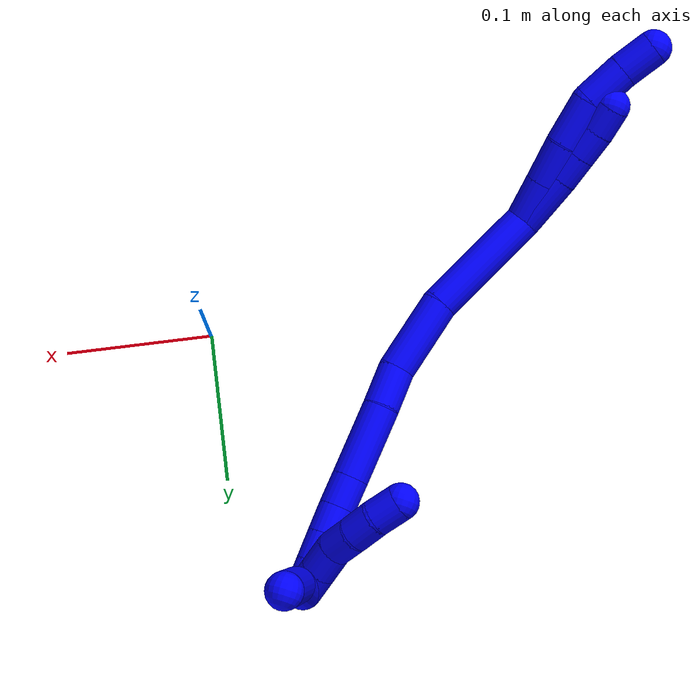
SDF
<sdf version="1.7">
 <world name="default">
  <model name="1">
   <static>0</static>
   <link name="1">
    <collision name="collision-cylinder-e_1_2_8">
     <pose>0.00698 -0.004528 -0.012782 2.80111 0.475363 1.90733</pose>
     <geometry><cylinder><radius>0.0125</radius><length>0.030503</length></cylinder></geometry>
     <surface>
      <friction><ode><mu>1.16</mu><mu2>1.16</mu2><slip1>0</slip1><slip2>0</slip2></ode></friction>
      <contact><ode><kp>1e+06</kp><kd>1</kd><max_vel>0</max_vel><min_depth>0.001</min_depth></ode></contact>
     </surface>
    </collision>
    <visual name="visual-cylinder-e_1_2_8">
     <pose>0.00698 -0.004528 -0.012782 2.80111 0.475363 1.90733</pose>
     <geometry><cylinder><radius>0.0125</radius><length>0.030503</length></cylinder></geometry>
     <material><ambient>0 0 1 1</ambient></material>
    </visual>
    <collision name="collision-cylinder-e_2_8_9">
     <pose>0.020922 -0.013339 -0.037979 2.80945 0.487458 1.95542</pose>
     <geometry><cylinder><radius>0.0125</radius><length>0.029727</length></cylinder></geometry>
     <surface>
      <friction><ode><mu>1.16</mu><mu2>1.16</mu2><slip1>0</slip1><slip2>0</slip2></ode></friction>
      <contact><ode><kp>1e+06</kp><kd>1</kd><max_vel>0</max_vel><min_depth>0.001</min_depth></ode></contact>
     </surface>
    </collision>
    <visual name="visual-cylinder-e_2_8_9">
     <pose>0.020922 -0.013339 -0.037979 2.80945 0.487458 1.95542</pose>
     <geometry><cylinder><radius>0.0125</radius><length>0.029727</length></cylinder></geometry>
     <material><ambient>0 0 1 1</ambient></material>
    </visual>
    <collision name="collision-cylinder-e_3_9_10">
     <pose>0.034323 -0.023215 -0.065097 2.77801 0.388492 1.63861</pose>
     <geometry><cylinder><radius>0.0125</radius><length>0.033997</length></cylinder></geometry>
     <surface>
      <friction><ode><mu>1.16</mu><mu2>1.16</mu2><slip1>0</slip1><slip2>0</slip2></ode></friction>
      <contact><ode><kp>1e+06</kp><kd>1</kd><max_vel>0</max_vel><min_depth>0.001</min_depth></ode></contact>
     </surface>
    </collision>
    <visual name="visual-cylinder-e_3_9_10">
     <pose>0.034323 -0.023215 -0.065097 2.77801 0.388492 1.63861</pose>
     <geometry><cylinder><radius>0.0125</radius><length>0.033997</length></cylinder></geometry>
     <material><ambient>0 0 1 1</ambient></material>
    </visual>
    <collision name="collision-cylinder-e_4_10_11">
     <pose>0.043326 -0.037456 -0.091864 2.51977 0.171088 0.521577</pose>
     <geometry><cylinder><radius>0.0125</radius><length>0.030124</length></cylinder></geometry>
     <surface>
      <friction><ode><mu>1.16</mu><mu2>1.16</mu2><slip1>0</slip1><slip2>0</slip2></ode></friction>
      <contact><ode><kp>1e+06</kp><kd>1</kd><max_vel>0</max_vel><min_depth>0.001</min_depth></ode></contact>
     </surface>
    </collision>
    <visual name="visual-cylinder-e_4_10_11">
     <pose>0.043326 -0.037456 -0.091864 2.51977 0.171088 0.521577</pose>
     <geometry><cylinder><radius>0.0125</radius><length>0.030124</length></cylinder></geometry>
     <material><ambient>0 0 1 1</ambient></material>
    </visual>
    <collision name="collision-cylinder-e_5_11_6">
     <pose>0.048329 -0.054527 -0.113283 2.40843 0.191369 0.489927</pose>
     <geometry><cylinder><radius>0.0125</radius><length>0.025649</length></cylinder></geometry>
     <surface>
      <friction><ode><mu>1.16</mu><mu2>1.16</mu2><slip1>0</slip1><slip2>0</slip2></ode></friction>
      <contact><ode><kp>1e+06</kp><kd>1</kd><max_vel>0</max_vel><min_depth>0.001</min_depth></ode></contact>
     </surface>
    </collision>
    <visual name="visual-cylinder-e_5_11_6">
     <pose>0.048329 -0.054527 -0.113283 2.40843 0.191369 0.489927</pose>
     <geometry><cylinder><radius>0.0125</radius><length>0.025649</length></cylinder></geometry>
     <material><ambient>0 0 1 1</ambient></material>
    </visual>
    <collision name="collision-cylinder-e_1_2_12">
     <pose>0.007067 -0.009542 -0.015558 2.59144 0.369441 1.1696</pose>
     <geometry><cylinder><radius>0.0125</radius><length>0.039143</length></cylinder></geometry>
     <surface>
      <friction><ode><mu>1.16</mu><mu2>1.16</mu2><slip1>0</slip1><slip2>0</slip2></ode></friction>
      <contact><ode><kp>1e+06</kp><kd>1</kd><max_vel>0</max_vel><min_depth>0.001</min_depth></ode></contact>
     </surface>
    </collision>
    <visual name="visual-cylinder-e_1_2_12">
     <pose>0.007067 -0.009542 -0.015558 2.59144 0.369441 1.1696</pose>
     <geometry><cylinder><radius>0.0125</radius><length>0.039143</length></cylinder></geometry>
     <material><ambient>0 0 1 1</ambient></material>
    </visual>
    <collision name="collision-cylinder-e_2_12_13">
     <pose>0.018281 -0.023664 -0.039346 2.63373 0.414713 1.36236</pose>
     <geometry><cylinder><radius>0.0125</radius><length>0.020583</length></cylinder></geometry>
     <surface>
      <friction><ode><mu>1.16</mu><mu2>1.16</mu2><slip1>0</slip1><slip2>0</slip2></ode></friction>
      <contact><ode><kp>1e+06</kp><kd>1</kd><max_vel>0</max_vel><min_depth>0.001</min_depth></ode></contact>
     </surface>
    </collision>
    <visual name="visual-cylinder-e_2_12_13">
     <pose>0.018281 -0.023664 -0.039346 2.63373 0.414713 1.36236</pose>
     <geometry><cylinder><radius>0.0125</radius><length>0.020583</length></cylinder></geometry>
     <material><ambient>0 0 1 1</ambient></material>
    </visual>
    <collision name="collision-cylinder-e_3_13_14">
     <pose>0.026483 -0.032716 -0.055605 2.63348 0.415624 1.36406</pose>
     <geometry><cylinder><radius>0.0125</radius><length>0.02009</length></cylinder></geometry>
     <surface>
      <friction><ode><mu>1.16</mu><mu2>1.16</mu2><slip1>0</slip1><slip2>0</slip2></ode></friction>
      <contact><ode><kp>1e+06</kp><kd>1</kd><max_vel>0</max_vel><min_depth>0.001</min_depth></ode></contact>
     </surface>
    </collision>
    <visual name="visual-cylinder-e_3_13_14">
     <pose>0.026483 -0.032716 -0.055605 2.63348 0.415624 1.36406</pose>
     <geometry><cylinder><radius>0.0125</radius><length>0.02009</length></cylinder></geometry>
     <material><ambient>0 0 1 1</ambient></material>
    </visual>
    <collision name="collision-cylinder-e_4_14_5">
     <pose>0.03536 -0.040897 -0.071687 2.70984 0.497994 1.71826</pose>
     <geometry><cylinder><radius>0.0125</radius><length>0.020184</length></cylinder></geometry>
     <surface>
      <friction><ode><mu>1.16</mu><mu2>1.16</mu2><slip1>0</slip1><slip2>0</slip2></ode></friction>
      <contact><ode><kp>1e+06</kp><kd>1</kd><max_vel>0</max_vel><min_depth>0.001</min_depth></ode></contact>
     </surface>
    </collision>
    <visual name="visual-cylinder-e_4_14_5">
     <pose>0.03536 -0.040897 -0.071687 2.70984 0.497994 1.71826</pose>
     <geometry><cylinder><radius>0.0125</radius><length>0.020184</length></cylinder></geometry>
     <material><ambient>0 0 1 1</ambient></material>
    </visual>
    <collision name="collision-cylinder-e_1_2_15">
     <pose>0.002152 0.019635 0.036551 -0.492946 0.051828 -0.013042</pose>
     <geometry><cylinder><radius>0.0125</radius><length>0.083094</length></cylinder></geometry>
     <surface>
      <friction><ode><mu>1.16</mu><mu2>1.16</mu2><slip1>0</slip1><slip2>0</slip2></ode></friction>
      <contact><ode><kp>1e+06</kp><kd>1</kd><max_vel>0</max_vel><min_depth>0.001</min_depth></ode></contact>
     </surface>
    </collision>
    <visual name="visual-cylinder-e_1_2_15">
     <pose>0.002152 0.019635 0.036551 -0.492946 0.051828 -0.013042</pose>
     <geometry><cylinder><radius>0.0125</radius><length>0.083094</length></cylinder></geometry>
     <material><ambient>0 0 1 1</ambient></material>
    </visual>
    <collision name="collision-cylinder-e_2_15_16">
     <pose>0.003645 0.047337 0.098839 -0.303772 -0.024464 0.003745</pose>
     <geometry><cylinder><radius>0.0125</radius><length>0.053959</length></cylinder></geometry>
     <surface>
      <friction><ode><mu>1.16</mu><mu2>1.16</mu2><slip1>0</slip1><slip2>0</slip2></ode></friction>
      <contact><ode><kp>1e+06</kp><kd>1</kd><max_vel>0</max_vel><min_depth>0.001</min_depth></ode></contact>
     </surface>
    </collision>
    <visual name="visual-cylinder-e_2_15_16">
     <pose>0.003645 0.047337 0.098839 -0.303772 -0.024464 0.003745</pose>
     <geometry><cylinder><radius>0.0125</radius><length>0.053959</length></cylinder></geometry>
     <material><ambient>0 0 1 1</ambient></material>
    </visual>
    <collision name="collision-cylinder-e_3_16_17">
     <pose>0.003346 0.05669 0.138818 -0.090021 0.025286 -0.001139</pose>
     <geometry><cylinder><radius>0.0125</radius><length>0.02861</length></cylinder></geometry>
     <surface>
      <friction><ode><mu>1.16</mu><mu2>1.16</mu2><slip1>0</slip1><slip2>0</slip2></ode></friction>
      <contact><ode><kp>1e+06</kp><kd>1</kd><max_vel>0</max_vel><min_depth>0.001</min_depth></ode></contact>
     </surface>
    </collision>
    <visual name="visual-cylinder-e_3_16_17">
     <pose>0.003346 0.05669 0.138818 -0.090021 0.025286 -0.001139</pose>
     <geometry><cylinder><radius>0.0125</radius><length>0.02861</length></cylinder></geometry>
     <material><ambient>0 0 1 1</ambient></material>
    </visual>
    <collision name="collision-cylinder-e_4_17_18">
     <pose>0.002126 0.061548 0.178844 -0.137662 -0.060717 0.004187</pose>
     <geometry><cylinder><radius>0.0125</radius><length>0.052155</length></cylinder></geometry>
     <surface>
      <friction><ode><mu>1.16</mu><mu2>1.16</mu2><slip1>0</slip1><slip2>0</slip2></ode></friction>
      <contact><ode><kp>1e+06</kp><kd>1</kd><max_vel>0</max_vel><min_depth>0.001</min_depth></ode></contact>
     </surface>
    </collision>
    <visual name="visual-cylinder-e_4_17_18">
     <pose>0.002126 0.061548 0.178844 -0.137662 -0.060717 0.004187</pose>
     <geometry><cylinder><radius>0.0125</radius><length>0.052155</length></cylinder></geometry>
     <material><ambient>0 0 1 1</ambient></material>
    </visual>
    <collision name="collision-cylinder-e_5_18_19">
     <pose>2.4e-05 0.06665 0.215385 -0.141323 -0.047794 0.003384</pose>
     <geometry><cylinder><radius>0.0125</radius><length>0.021758</length></cylinder></geometry>
     <surface>
      <friction><ode><mu>1.16</mu><mu2>1.16</mu2><slip1>0</slip1><slip2>0</slip2></ode></friction>
      <contact><ode><kp>1e+06</kp><kd>1</kd><max_vel>0</max_vel><min_depth>0.001</min_depth></ode></contact>
     </surface>
    </collision>
    <visual name="visual-cylinder-e_5_18_19">
     <pose>2.4e-05 0.06665 0.215385 -0.141323 -0.047794 0.003384</pose>
     <geometry><cylinder><radius>0.0125</radius><length>0.021758</length></cylinder></geometry>
     <material><ambient>0 0 1 1</ambient></material>
    </visual>
    <collision name="collision-cylinder-e_6_19_20">
     <pose>-0.000642 0.069219 0.236184 -0.102981 -0.014398 0.000742</pose>
     <geometry><cylinder><radius>0.0125</radius><length>0.020191</length></cylinder></geometry>
     <surface>
      <friction><ode><mu>1.16</mu><mu2>1.16</mu2><slip1>0</slip1><slip2>0</slip2></ode></friction>
      <contact><ode><kp>1e+06</kp><kd>1</kd><max_vel>0</max_vel><min_depth>0.001</min_depth></ode></contact>
     </surface>
    </collision>
    <visual name="visual-cylinder-e_6_19_20">
     <pose>-0.000642 0.069219 0.236184 -0.102981 -0.014398 0.000742</pose>
     <geometry><cylinder><radius>0.0125</radius><length>0.020191</length></cylinder></geometry>
     <material><ambient>0 0 1 1</ambient></material>
    </visual>
    <collision name="collision-cylinder-e_7_20_21">
     <pose>-0.000924 0.071263 0.256288 -0.099674 -0.013514 0.000674</pose>
     <geometry><cylinder><radius>0.0125</radius><length>0.020227</length></cylinder></geometry>
     <surface>
      <friction><ode><mu>1.16</mu><mu2>1.16</mu2><slip1>0</slip1><slip2>0</slip2></ode></friction>
      <contact><ode><kp>1e+06</kp><kd>1</kd><max_vel>0</max_vel><min_depth>0.001</min_depth></ode></contact>
     </surface>
    </collision>
    <visual name="visual-cylinder-e_7_20_21">
     <pose>-0.000924 0.071263 0.256288 -0.099674 -0.013514 0.000674</pose>
     <geometry><cylinder><radius>0.0125</radius><length>0.020227</length></cylinder></geometry>
     <material><ambient>0 0 1 1</ambient></material>
    </visual>
    <collision name="collision-cylinder-e_8_21_1">
     <pose>-0.000999 0.073143 0.276315 -0.087471 0.006148 -0.000269</pose>
     <geometry><cylinder><radius>0.0125</radius><length>0.020006</length></cylinder></geometry>
     <surface>
      <friction><ode><mu>1.16</mu><mu2>1.16</mu2><slip1>0</slip1><slip2>0</slip2></ode></friction>
      <contact><ode><kp>1e+06</kp><kd>1</kd><max_vel>0</max_vel><min_depth>0.001</min_depth></ode></contact>
     </surface>
    </collision>
    <visual name="visual-cylinder-e_8_21_1">
     <pose>-0.000999 0.073143 0.276315 -0.087471 0.006148 -0.000269</pose>
     <geometry><cylinder><radius>0.0125</radius><length>0.020006</length></cylinder></geometry>
     <material><ambient>0 0 1 1</ambient></material>
    </visual>
    <collision name="collision-cylinder-e_1_1_22">
     <pose>0.013018 0.073379 0.286531 1.19528 1.52177 1.15007</pose>
     <geometry><cylinder><radius>0.0125</radius><length>0.027944</length></cylinder></geometry>
     <surface>
      <friction><ode><mu>1.16</mu><mu2>1.16</mu2><slip1>0</slip1><slip2>0</slip2></ode></friction>
      <contact><ode><kp>1e+06</kp><kd>1</kd><max_vel>0</max_vel><min_depth>0.001</min_depth></ode></contact>
     </surface>
    </collision>
    <visual name="visual-cylinder-e_1_1_22">
     <pose>0.013018 0.073379 0.286531 1.19528 1.52177 1.15007</pose>
     <geometry><cylinder><radius>0.0125</radius><length>0.027944</length></cylinder></geometry>
     <material><ambient>0 0 1 1</ambient></material>
    </visual>
    <collision name="collision-cylinder-e_2_22_4">
     <pose>0.061955 0.067011 0.293221 0.727371 1.32919 0.579629</pose>
     <geometry><cylinder><radius>0.0125</radius><length>0.072056</length></cylinder></geometry>
     <surface>
      <friction><ode><mu>1.16</mu><mu2>1.16</mu2><slip1>0</slip1><slip2>0</slip2></ode></friction>
      <contact><ode><kp>1e+06</kp><kd>1</kd><max_vel>0</max_vel><min_depth>0.001</min_depth></ode></contact>
     </surface>
    </collision>
    <visual name="visual-cylinder-e_2_22_4">
     <pose>0.061955 0.067011 0.293221 0.727371 1.32919 0.579629</pose>
     <geometry><cylinder><radius>0.0125</radius><length>0.072056</length></cylinder></geometry>
     <material><ambient>0 0 1 1</ambient></material>
    </visual>
    <collision name="collision-cylinder-e_1_1_23">
     <pose>0.003969 0.069859 0.278622 2.64427 0.512814 1.60282</pose>
     <geometry><cylinder><radius>0.0125</radius><length>0.02</length></cylinder></geometry>
     <surface>
      <friction><ode><mu>1.16</mu><mu2>1.16</mu2><slip1>0</slip1><slip2>0</slip2></ode></friction>
      <contact><ode><kp>1e+06</kp><kd>1</kd><max_vel>0</max_vel><min_depth>0.001</min_depth></ode></contact>
     </surface>
    </collision>
    <visual name="visual-cylinder-e_1_1_23">
     <pose>0.003969 0.069859 0.278622 2.64427 0.512814 1.60282</pose>
     <geometry><cylinder><radius>0.0125</radius><length>0.02</length></cylinder></geometry>
     <material><ambient>0 0 1 1</ambient></material>
    </visual>
    <collision name="collision-cylinder-e_2_23_24">
     <pose>0.014046 0.061502 0.263505 2.62862 0.543367 1.6311</pose>
     <geometry><cylinder><radius>0.0125</radius><length>0.02</length></cylinder></geometry>
     <surface>
      <friction><ode><mu>1.16</mu><mu2>1.16</mu2><slip1>0</slip1><slip2>0</slip2></ode></friction>
      <contact><ode><kp>1e+06</kp><kd>1</kd><max_vel>0</max_vel><min_depth>0.001</min_depth></ode></contact>
     </surface>
    </collision>
    <visual name="visual-cylinder-e_2_23_24">
     <pose>0.014046 0.061502 0.263505 2.62862 0.543367 1.6311</pose>
     <geometry><cylinder><radius>0.0125</radius><length>0.02</length></cylinder></geometry>
     <material><ambient>0 0 1 1</ambient></material>
    </visual>
    <collision name="collision-cylinder-e_3_24_25">
     <pose>0.024694 0.050972 0.250576 2.28369 0.579798 1.15589</pose>
     <geometry><cylinder><radius>0.0125</radius><length>0.02</length></cylinder></geometry>
     <surface>
      <friction><ode><mu>1.16</mu><mu2>1.16</mu2><slip1>0</slip1><slip2>0</slip2></ode></friction>
      <contact><ode><kp>1e+06</kp><kd>1</kd><max_vel>0</max_vel><min_depth>0.001</min_depth></ode></contact>
     </surface>
    </collision>
    <visual name="visual-cylinder-e_3_24_25">
     <pose>0.024694 0.050972 0.250576 2.28369 0.579798 1.15589</pose>
     <geometry><cylinder><radius>0.0125</radius><length>0.02</length></cylinder></geometry>
     <material><ambient>0 0 1 1</ambient></material>
    </visual>
    <collision name="collision-cylinder-e_4_25_26">
     <pose>0.034507 0.038251 0.238753 2.35291 0.448312 1.0024</pose>
     <geometry><cylinder><radius>0.0125</radius><length>0.02</length></cylinder></geometry>
     <surface>
      <friction><ode><mu>1.16</mu><mu2>1.16</mu2><slip1>0</slip1><slip2>0</slip2></ode></friction>
      <contact><ode><kp>1e+06</kp><kd>1</kd><max_vel>0</max_vel><min_depth>0.001</min_depth></ode></contact>
     </surface>
    </collision>
    <visual name="visual-cylinder-e_4_25_26">
     <pose>0.034507 0.038251 0.238753 2.35291 0.448312 1.0024</pose>
     <geometry><cylinder><radius>0.0125</radius><length>0.02</length></cylinder></geometry>
     <material><ambient>0 0 1 1</ambient></material>
    </visual>
    <collision name="collision-cylinder-e_5_26_3">
     <pose>0.041371 0.024913 0.225665 2.34101 0.25573 0.589956</pose>
     <geometry><cylinder><radius>0.0125</radius><length>0.02</length></cylinder></geometry>
     <surface>
      <friction><ode><mu>1.16</mu><mu2>1.16</mu2><slip1>0</slip1><slip2>0</slip2></ode></friction>
      <contact><ode><kp>1e+06</kp><kd>1</kd><max_vel>0</max_vel><min_depth>0.001</min_depth></ode></contact>
     </surface>
    </collision>
    <visual name="visual-cylinder-e_5_26_3">
     <pose>0.041371 0.024913 0.225665 2.34101 0.25573 0.589956</pose>
     <geometry><cylinder><radius>0.0125</radius><length>0.02</length></cylinder></geometry>
     <material><ambient>0 0 1 1</ambient></material>
    </visual>
    <collision name="collision-sphere-3">
     <pose>0.043901 0.017969 0.218929 0 -0 0</pose>
     <geometry><sphere><radius>0.0125</radius></sphere></geometry>
     <surface>
      <friction><ode><mu>1.16</mu><mu2>1.16</mu2><slip1>0</slip1><slip2>0</slip2></ode></friction>
      <contact><ode><kp>1e+06</kp><kd>1</kd><max_vel>0</max_vel><min_depth>0.001</min_depth></ode></contact>
     </surface>
    </collision>
    <visual name="visual-sphere-3">
     <pose>0.043901 0.017969 0.218929 0 -0 0</pose>
     <geometry><sphere><radius>0.0125</radius></sphere></geometry>
     <material><ambient>0 0 1 1</ambient></material>
    </visual>
    <collision name="collision-sphere-26">
     <pose>0.038842 0.031857 0.232402 0 -0 0</pose>
     <geometry><sphere><radius>0.0125</radius></sphere></geometry>
     <surface>
      <friction><ode><mu>1.16</mu><mu2>1.16</mu2><slip1>0</slip1><slip2>0</slip2></ode></friction>
      <contact><ode><kp>1e+06</kp><kd>1</kd><max_vel>0</max_vel><min_depth>0.001</min_depth></ode></contact>
     </surface>
    </collision>
    <visual name="visual-sphere-26">
     <pose>0.038842 0.031857 0.232402 0 -0 0</pose>
     <geometry><sphere><radius>0.0125</radius></sphere></geometry>
     <material><ambient>0 0 1 1</ambient></material>
    </visual>
    <collision name="collision-sphere-25">
     <pose>0.030173 0.044644 0.245105 0 -0 0</pose>
     <geometry><sphere><radius>0.0125</radius></sphere></geometry>
     <surface>
      <friction><ode><mu>1.16</mu><mu2>1.16</mu2><slip1>0</slip1><slip2>0</slip2></ode></friction>
      <contact><ode><kp>1e+06</kp><kd>1</kd><max_vel>0</max_vel><min_depth>0.001</min_depth></ode></contact>
     </surface>
    </collision>
    <visual name="visual-sphere-25">
     <pose>0.030173 0.044644 0.245105 0 -0 0</pose>
     <geometry><sphere><radius>0.0125</radius></sphere></geometry>
     <material><ambient>0 0 1 1</ambient></material>
    </visual>
    <collision name="collision-sphere-24">
     <pose>0.019216 0.057301 0.256047 0 -0 0</pose>
     <geometry><sphere><radius>0.0125</radius></sphere></geometry>
     <surface>
      <friction><ode><mu>1.16</mu><mu2>1.16</mu2><slip1>0</slip1><slip2>0</slip2></ode></friction>
      <contact><ode><kp>1e+06</kp><kd>1</kd><max_vel>0</max_vel><min_depth>0.001</min_depth></ode></contact>
     </surface>
    </collision>
    <visual name="visual-sphere-24">
     <pose>0.019216 0.057301 0.256047 0 -0 0</pose>
     <geometry><sphere><radius>0.0125</radius></sphere></geometry>
     <material><ambient>0 0 1 1</ambient></material>
    </visual>
    <collision name="collision-sphere-23">
     <pose>0.008875 0.065702 0.270963 0 -0 0</pose>
     <geometry><sphere><radius>0.0125</radius></sphere></geometry>
     <surface>
      <friction><ode><mu>1.16</mu><mu2>1.16</mu2><slip1>0</slip1><slip2>0</slip2></ode></friction>
      <contact><ode><kp>1e+06</kp><kd>1</kd><max_vel>0</max_vel><min_depth>0.001</min_depth></ode></contact>
     </surface>
    </collision>
    <visual name="visual-sphere-23">
     <pose>0.008875 0.065702 0.270963 0 -0 0</pose>
     <geometry><sphere><radius>0.0125</radius></sphere></geometry>
     <material><ambient>0 0 1 1</ambient></material>
    </visual>
    <collision name="collision-sphere-4">
     <pose>0.096936 0.061279 0.299659 0 -0 0</pose>
     <geometry><sphere><radius>0.0125</radius></sphere></geometry>
     <surface>
      <friction><ode><mu>1.16</mu><mu2>1.16</mu2><slip1>0</slip1><slip2>0</slip2></ode></friction>
      <contact><ode><kp>1e+06</kp><kd>1</kd><max_vel>0</max_vel><min_depth>0.001</min_depth></ode></contact>
     </surface>
    </collision>
    <visual name="visual-sphere-4">
     <pose>0.096936 0.061279 0.299659 0 -0 0</pose>
     <geometry><sphere><radius>0.0125</radius></sphere></geometry>
     <material><ambient>0 0 1 1</ambient></material>
    </visual>
    <collision name="collision-sphere-22">
     <pose>0.026973 0.072742 0.286782 0 -0 0</pose>
     <geometry><sphere><radius>0.0125</radius></sphere></geometry>
     <surface>
      <friction><ode><mu>1.16</mu><mu2>1.16</mu2><slip1>0</slip1><slip2>0</slip2></ode></friction>
      <contact><ode><kp>1e+06</kp><kd>1</kd><max_vel>0</max_vel><min_depth>0.001</min_depth></ode></contact>
     </surface>
    </collision>
    <visual name="visual-sphere-22">
     <pose>0.026973 0.072742 0.286782 0 -0 0</pose>
     <geometry><sphere><radius>0.0125</radius></sphere></geometry>
     <material><ambient>0 0 1 1</ambient></material>
    </visual>
    <collision name="collision-sphere-1">
     <pose>-0.000937 0.074017 0.28628 0 -0 0</pose>
     <geometry><sphere><radius>0.0125</radius></sphere></geometry>
     <surface>
      <friction><ode><mu>1.16</mu><mu2>1.16</mu2><slip1>0</slip1><slip2>0</slip2></ode></friction>
      <contact><ode><kp>1e+06</kp><kd>1</kd><max_vel>0</max_vel><min_depth>0.001</min_depth></ode></contact>
     </surface>
    </collision>
    <visual name="visual-sphere-1">
     <pose>-0.000937 0.074017 0.28628 0 -0 0</pose>
     <geometry><sphere><radius>0.0125</radius></sphere></geometry>
     <material><ambient>0 0 1 1</ambient></material>
    </visual>
    <collision name="collision-sphere-21">
     <pose>-0.00106 0.072269 0.266351 0 -0 0</pose>
     <geometry><sphere><radius>0.0125</radius></sphere></geometry>
     <surface>
      <friction><ode><mu>1.16</mu><mu2>1.16</mu2><slip1>0</slip1><slip2>0</slip2></ode></friction>
      <contact><ode><kp>1e+06</kp><kd>1</kd><max_vel>0</max_vel><min_depth>0.001</min_depth></ode></contact>
     </surface>
    </collision>
    <visual name="visual-sphere-21">
     <pose>-0.00106 0.072269 0.266351 0 -0 0</pose>
     <geometry><sphere><radius>0.0125</radius></sphere></geometry>
     <material><ambient>0 0 1 1</ambient></material>
    </visual>
    <collision name="collision-sphere-6">
     <pose>0.050769 -0.062953 -0.122639 0 -0 0</pose>
     <geometry><sphere><radius>0.0125</radius></sphere></geometry>
     <surface>
      <friction><ode><mu>1.16</mu><mu2>1.16</mu2><slip1>0</slip1><slip2>0</slip2></ode></friction>
      <contact><ode><kp>1e+06</kp><kd>1</kd><max_vel>0</max_vel><min_depth>0.001</min_depth></ode></contact>
     </surface>
    </collision>
    <visual name="visual-sphere-6">
     <pose>0.050769 -0.062953 -0.122639 0 -0 0</pose>
     <geometry><sphere><radius>0.0125</radius></sphere></geometry>
     <material><ambient>0 0 1 1</ambient></material>
    </visual>
    <collision name="collision-sphere-11">
     <pose>0.04589 -0.046102 -0.103928 0 -0 0</pose>
     <geometry><sphere><radius>0.0125</radius></sphere></geometry>
     <surface>
      <friction><ode><mu>1.16</mu><mu2>1.16</mu2><slip1>0</slip1><slip2>0</slip2></ode></friction>
      <contact><ode><kp>1e+06</kp><kd>1</kd><max_vel>0</max_vel><min_depth>0.001</min_depth></ode></contact>
     </surface>
    </collision>
    <visual name="visual-sphere-11">
     <pose>0.04589 -0.046102 -0.103928 0 -0 0</pose>
     <geometry><sphere><radius>0.0125</radius></sphere></geometry>
     <material><ambient>0 0 1 1</ambient></material>
    </visual>
    <collision name="collision-sphere-10">
     <pose>0.040761 -0.02881 -0.0798 0 -0 0</pose>
     <geometry><sphere><radius>0.0125</radius></sphere></geometry>
     <surface>
      <friction><ode><mu>1.16</mu><mu2>1.16</mu2><slip1>0</slip1><slip2>0</slip2></ode></friction>
      <contact><ode><kp>1e+06</kp><kd>1</kd><max_vel>0</max_vel><min_depth>0.001</min_depth></ode></contact>
     </surface>
    </collision>
    <visual name="visual-sphere-10">
     <pose>0.040761 -0.02881 -0.0798 0 -0 0</pose>
     <geometry><sphere><radius>0.0125</radius></sphere></geometry>
     <material><ambient>0 0 1 1</ambient></material>
    </visual>
    <collision name="collision-sphere-9">
     <pose>0.027884 -0.017621 -0.050394 0 -0 0</pose>
     <geometry><sphere><radius>0.0125</radius></sphere></geometry>
     <surface>
      <friction><ode><mu>1.16</mu><mu2>1.16</mu2><slip1>0</slip1><slip2>0</slip2></ode></friction>
      <contact><ode><kp>1e+06</kp><kd>1</kd><max_vel>0</max_vel><min_depth>0.001</min_depth></ode></contact>
     </surface>
    </collision>
    <visual name="visual-sphere-9">
     <pose>0.027884 -0.017621 -0.050394 0 -0 0</pose>
     <geometry><sphere><radius>0.0125</radius></sphere></geometry>
     <material><ambient>0 0 1 1</ambient></material>
    </visual>
    <collision name="collision-sphere-2">
     <geometry><sphere><radius>0.0125</radius></sphere></geometry>
     <surface>
      <friction><ode><mu>1.16</mu><mu2>1.16</mu2><slip1>0</slip1><slip2>0</slip2></ode></friction>
      <contact><ode><kp>1e+06</kp><kd>1</kd><max_vel>0</max_vel><min_depth>0.001</min_depth></ode></contact>
     </surface>
    </collision>
    <visual name="visual-sphere-2">
     <geometry><sphere><radius>0.0125</radius></sphere></geometry>
     <material><ambient>0 0 1 1</ambient></material>
    </visual>
    <collision name="collision-sphere-19">
     <pose>-0.000496 0.068181 0.226143 0 -0 0</pose>
     <geometry><sphere><radius>0.0125</radius></sphere></geometry>
     <surface>
      <friction><ode><mu>1.16</mu><mu2>1.16</mu2><slip1>0</slip1><slip2>0</slip2></ode></friction>
      <contact><ode><kp>1e+06</kp><kd>1</kd><max_vel>0</max_vel><min_depth>0.001</min_depth></ode></contact>
     </surface>
    </collision>
    <visual name="visual-sphere-19">
     <pose>-0.000496 0.068181 0.226143 0 -0 0</pose>
     <geometry><sphere><radius>0.0125</radius></sphere></geometry>
     <material><ambient>0 0 1 1</ambient></material>
    </visual>
    <collision name="collision-sphere-8">
     <pose>0.01396 -0.009057 -0.025564 0 -0 0</pose>
     <geometry><sphere><radius>0.0125</radius></sphere></geometry>
     <surface>
      <friction><ode><mu>1.16</mu><mu2>1.16</mu2><slip1>0</slip1><slip2>0</slip2></ode></friction>
      <contact><ode><kp>1e+06</kp><kd>1</kd><max_vel>0</max_vel><min_depth>0.001</min_depth></ode></contact>
     </surface>
    </collision>
    <visual name="visual-sphere-8">
     <pose>0.01396 -0.009057 -0.025564 0 -0 0</pose>
     <geometry><sphere><radius>0.0125</radius></sphere></geometry>
     <material><ambient>0 0 1 1</ambient></material>
    </visual>
    <collision name="collision-sphere-12">
     <pose>0.014134 -0.019084 -0.031116 0 -0 0</pose>
     <geometry><sphere><radius>0.0125</radius></sphere></geometry>
     <surface>
      <friction><ode><mu>1.16</mu><mu2>1.16</mu2><slip1>0</slip1><slip2>0</slip2></ode></friction>
      <contact><ode><kp>1e+06</kp><kd>1</kd><max_vel>0</max_vel><min_depth>0.001</min_depth></ode></contact>
     </surface>
    </collision>
    <visual name="visual-sphere-12">
     <pose>0.014134 -0.019084 -0.031116 0 -0 0</pose>
     <geometry><sphere><radius>0.0125</radius></sphere></geometry>
     <material><ambient>0 0 1 1</ambient></material>
    </visual>
    <collision name="collision-sphere-13">
     <pose>0.022428 -0.028245 -0.047576 0 -0 0</pose>
     <geometry><sphere><radius>0.0125</radius></sphere></geometry>
     <surface>
      <friction><ode><mu>1.16</mu><mu2>1.16</mu2><slip1>0</slip1><slip2>0</slip2></ode></friction>
      <contact><ode><kp>1e+06</kp><kd>1</kd><max_vel>0</max_vel><min_depth>0.001</min_depth></ode></contact>
     </surface>
    </collision>
    <visual name="visual-sphere-13">
     <pose>0.022428 -0.028245 -0.047576 0 -0 0</pose>
     <geometry><sphere><radius>0.0125</radius></sphere></geometry>
     <material><ambient>0 0 1 1</ambient></material>
    </visual>
    <collision name="collision-sphere-14">
     <pose>0.030539 -0.037187 -0.063634 0 -0 0</pose>
     <geometry><sphere><radius>0.0125</radius></sphere></geometry>
     <surface>
      <friction><ode><mu>1.16</mu><mu2>1.16</mu2><slip1>0</slip1><slip2>0</slip2></ode></friction>
      <contact><ode><kp>1e+06</kp><kd>1</kd><max_vel>0</max_vel><min_depth>0.001</min_depth></ode></contact>
     </surface>
    </collision>
    <visual name="visual-sphere-14">
     <pose>0.030539 -0.037187 -0.063634 0 -0 0</pose>
     <geometry><sphere><radius>0.0125</radius></sphere></geometry>
     <material><ambient>0 0 1 1</ambient></material>
    </visual>
    <collision name="collision-sphere-5">
     <pose>0.040181 -0.044608 -0.079739 0 -0 0</pose>
     <geometry><sphere><radius>0.0125</radius></sphere></geometry>
     <surface>
      <friction><ode><mu>1.16</mu><mu2>1.16</mu2><slip1>0</slip1><slip2>0</slip2></ode></friction>
      <contact><ode><kp>1e+06</kp><kd>1</kd><max_vel>0</max_vel><min_depth>0.001</min_depth></ode></contact>
     </surface>
    </collision>
    <visual name="visual-sphere-5">
     <pose>0.040181 -0.044608 -0.079739 0 -0 0</pose>
     <geometry><sphere><radius>0.0125</radius></sphere></geometry>
     <material><ambient>0 0 1 1</ambient></material>
    </visual>
    <collision name="collision-sphere-15">
     <pose>0.004305 0.039269 0.073102 0 -0 0</pose>
     <geometry><sphere><radius>0.0125</radius></sphere></geometry>
     <surface>
      <friction><ode><mu>1.16</mu><mu2>1.16</mu2><slip1>0</slip1><slip2>0</slip2></ode></friction>
      <contact><ode><kp>1e+06</kp><kd>1</kd><max_vel>0</max_vel><min_depth>0.001</min_depth></ode></contact>
     </surface>
    </collision>
    <visual name="visual-sphere-15">
     <pose>0.004305 0.039269 0.073102 0 -0 0</pose>
     <geometry><sphere><radius>0.0125</radius></sphere></geometry>
     <material><ambient>0 0 1 1</ambient></material>
    </visual>
    <collision name="collision-sphere-16">
     <pose>0.002985 0.055405 0.124576 0 -0 0</pose>
     <geometry><sphere><radius>0.0125</radius></sphere></geometry>
     <surface>
      <friction><ode><mu>1.16</mu><mu2>1.16</mu2><slip1>0</slip1><slip2>0</slip2></ode></friction>
      <contact><ode><kp>1e+06</kp><kd>1</kd><max_vel>0</max_vel><min_depth>0.001</min_depth></ode></contact>
     </surface>
    </collision>
    <visual name="visual-sphere-16">
     <pose>0.002985 0.055405 0.124576 0 -0 0</pose>
     <geometry><sphere><radius>0.0125</radius></sphere></geometry>
     <material><ambient>0 0 1 1</ambient></material>
    </visual>
    <collision name="collision-sphere-17">
     <pose>0.003708 0.057976 0.153061 0 -0 0</pose>
     <geometry><sphere><radius>0.0125</radius></sphere></geometry>
     <surface>
      <friction><ode><mu>1.16</mu><mu2>1.16</mu2><slip1>0</slip1><slip2>0</slip2></ode></friction>
      <contact><ode><kp>1e+06</kp><kd>1</kd><max_vel>0</max_vel><min_depth>0.001</min_depth></ode></contact>
     </surface>
    </collision>
    <visual name="visual-sphere-17">
     <pose>0.003708 0.057976 0.153061 0 -0 0</pose>
     <geometry><sphere><radius>0.0125</radius></sphere></geometry>
     <material><ambient>0 0 1 1</ambient></material>
    </visual>
    <collision name="collision-sphere-18">
     <pose>0.000543 0.06512 0.204627 0 -0 0</pose>
     <geometry><sphere><radius>0.0125</radius></sphere></geometry>
     <surface>
      <friction><ode><mu>1.16</mu><mu2>1.16</mu2><slip1>0</slip1><slip2>0</slip2></ode></friction>
      <contact><ode><kp>1e+06</kp><kd>1</kd><max_vel>0</max_vel><min_depth>0.001</min_depth></ode></contact>
     </surface>
    </collision>
    <visual name="visual-sphere-18">
     <pose>0.000543 0.06512 0.204627 0 -0 0</pose>
     <geometry><sphere><radius>0.0125</radius></sphere></geometry>
     <material><ambient>0 0 1 1</ambient></material>
    </visual>
    <collision name="collision-sphere-20">
     <pose>-0.000787 0.070256 0.246226 0 -0 0</pose>
     <geometry><sphere><radius>0.0125</radius></sphere></geometry>
     <surface>
      <friction><ode><mu>1.16</mu><mu2>1.16</mu2><slip1>0</slip1><slip2>0</slip2></ode></friction>
      <contact><ode><kp>1e+06</kp><kd>1</kd><max_vel>0</max_vel><min_depth>0.001</min_depth></ode></contact>
     </surface>
    </collision>
    <visual name="visual-sphere-20">
     <pose>-0.000787 0.070256 0.246226 0 -0 0</pose>
     <geometry><sphere><radius>0.0125</radius></sphere></geometry>
     <material><ambient>0 0 1 1</ambient></material>
    </visual>
    <inertial>
     <pose>0.018901 0.027153 0.110302 0 -0 0</pose>
     <mass>0.75</mass>
     <inertia>
      <ixx>0.000154</ixx>
      <ixy>0</ixy>
      <ixz>0</ixz>
      <iyy>0.000143</iyy>
      <iyz>0</iyz>
      <izz>-5.8e-05</izz>
     </inertia>
    </inertial>
   </link>
   <pose>-0.223098 -0.053151 0.011486 -1.25171 -1.35336 -0.720071</pose>
  </model>
 </world>
</sdf>
